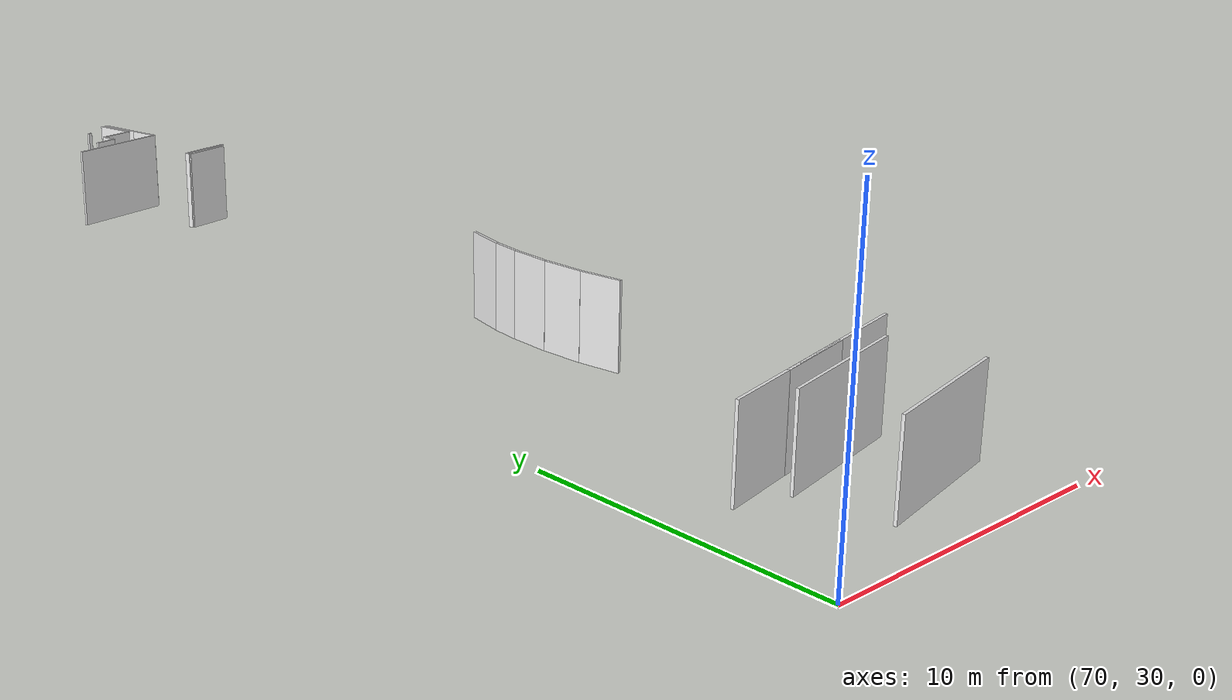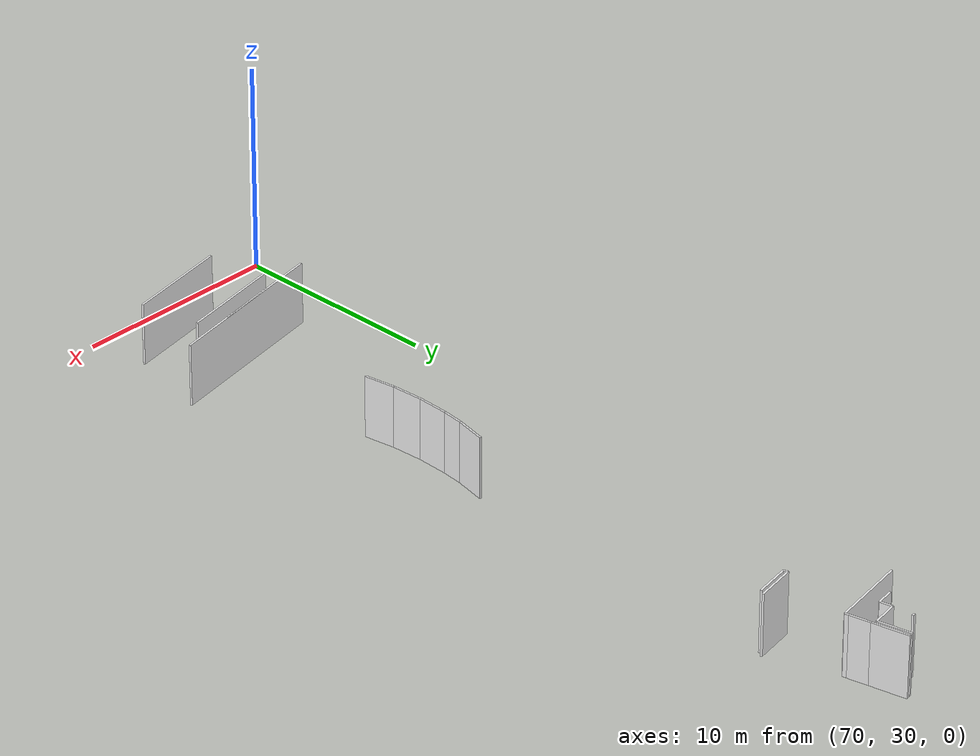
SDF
<sdf version="1.6">
 <world name="default">
  <model name="wall_74.9_72.7">
   <static>true</static>
   <pose>74.86499999999069 72.69500000006519 1.5 0 0 -2.944197095083166</pose>
   <link name="link">
    <visual name="visual">
     <geometry><box><size>0.15297058539043204 0.1 3</size></box></geometry>
     <material>
      <script><uri>file://media/materials/scripts/gazebo.material</uri><name>Gazebo/White</name></script>
     </material>
    </visual>
    <collision name="collision"><geometry><box><size>0.15297058539043204 0.1 3</size></box></geometry></collision>
   </link>
  </model>
  <model name="wall_74.7_71.0">
   <static>true</static>
   <pose>74.67499999998836 71.02499999990687 1.5 0 0 0.19739555977086584</pose>
   <link name="link">
    <visual name="visual">
     <geometry><box><size>0.8668333172733308 0.1 3</size></box></geometry>
     <material>
      <script><uri>file://media/materials/scripts/gazebo.material</uri><name>Gazebo/White</name></script>
     </material>
    </visual>
    <collision name="collision"><geometry><box><size>0.8668333172733308 0.1 3</size></box></geometry></collision>
   </link>
  </model>
  <model name="wall_75.0_71.4">
   <static>true</static>
   <pose>75.03999999997905 71.40500000002794 1.5 0 0 1.7714492040023821</pose>
   <link name="link">
    <visual name="visual">
     <geometry><box><size>0.6020797292489833 0.1 3</size></box></geometry>
     <material>
      <script><uri>file://media/materials/scripts/gazebo.material</uri><name>Gazebo/White</name></script>
     </material>
    </visual>
    <collision name="collision"><geometry><box><size>0.6020797292489833 0.1 3</size></box></geometry></collision>
   </link>
  </model>
  <model name="wall_75.6_71.8">
   <static>true</static>
   <pose>75.61499999999069 71.82500000018626 1.5 0 0 0.1943652660922386</pose>
   <link name="link">
    <visual name="visual">
     <geometry><box><size>1.2943724348298333 0.1 3</size></box></geometry>
     <material>
      <script><uri>file://media/materials/scripts/gazebo.material</uri><name>Gazebo/White</name></script>
     </material>
    </visual>
    <collision name="collision"><geometry><box><size>1.2943724348298333 0.1 3</size></box></geometry></collision>
   </link>
  </model>
  <model name="wall_76.1_72.8">
   <static>true</static>
   <pose>76.08999999999651 72.75500000012107 1.5 0 0 1.7669971441026713</pose>
   <link name="link">
    <visual name="visual">
     <geometry><box><size>1.6414932225216863 0.1 3</size></box></geometry>
     <material>
      <script><uri>file://media/materials/scripts/gazebo.material</uri><name>Gazebo/White</name></script>
     </material>
    </visual>
    <collision name="collision"><geometry><box><size>1.6414932225216863 0.1 3</size></box></geometry></collision>
   </link>
  </model>
  <model name="wall_76.3_72.7">
   <static>true</static>
   <pose>76.2949999999837 72.71999999997206 1.5 0 0 -1.374493662723798</pose>
   <link name="link">
    <visual name="visual">
     <geometry><box><size>1.7944637084198858 0.1 3</size></box></geometry>
     <material>
      <script><uri>file://media/materials/scripts/gazebo.material</uri><name>Gazebo/White</name></script>
     </material>
    </visual>
    <collision name="collision"><geometry><box><size>1.7944637084198858 0.1 3</size></box></geometry></collision>
   </link>
  </model>
  <model name="wall_76.6_71.3">
   <static>true</static>
   <pose>76.56999999997788 71.3499999998603 1.5 0 0 -1.3694792184051279</pose>
   <link name="link">
    <visual name="visual">
     <geometry><box><size>1.0001999799880765 0.1 3</size></box></geometry>
     <material>
      <script><uri>file://media/materials/scripts/gazebo.material</uri><name>Gazebo/White</name></script>
     </material>
    </visual>
    <collision name="collision"><geometry><box><size>1.0001999799880765 0.1 3</size></box></geometry></collision>
   </link>
  </model>
  <model name="wall_76.7_70.8">
   <static>true</static>
   <pose>76.69000000000233 70.76499999989755 1.5 0 0 -1.3633001001126588</pose>
   <link name="link">
    <visual name="visual">
     <geometry><box><size>0.19416487834246976 0.1 3</size></box></geometry>
     <material>
      <script><uri>file://media/materials/scripts/gazebo.material</uri><name>Gazebo/White</name></script>
     </material>
    </visual>
    <collision name="collision"><geometry><box><size>0.19416487834246976 0.1 3</size></box></geometry></collision>
   </link>
  </model>
  <model name="wall_76.9_67.2">
   <static>true</static>
   <pose>76.94999999998254 67.18999999994412 1.5 0 0 -2.9481653269346513</pose>
   <link name="link">
    <visual name="visual">
     <geometry><box><size>1.976866206885053 0.1 3</size></box></geometry>
     <material>
      <script><uri>file://media/materials/scripts/gazebo.material</uri><name>Gazebo/White</name></script>
     </material>
    </visual>
    <collision name="collision"><geometry><box><size>1.976866206885053 0.1 3</size></box></geometry></collision>
   </link>
  </model>
  <model name="wall_74.8_70.3">
   <static>true</static>
   <pose>74.83999999999651 70.30000000004657 1.5 0 0 0.19533794952017633</pose>
   <link name="link">
    <visual name="visual">
     <geometry><box><size>3.8125057377015654 0.1 3</size></box></geometry>
     <material>
      <script><uri>file://media/materials/scripts/gazebo.material</uri><name>Gazebo/White</name></script>
     </material>
    </visual>
    <collision name="collision"><geometry><box><size>3.8125057377015654 0.1 3</size></box></geometry></collision>
   </link>
  </model>
  <model name="wall_76.9_32.1">
   <static>true</static>
   <pose>76.87999999997555 32.14500000001863 1.5 0 0 -2.948381169699356</pose>
   <link name="link">
    <visual name="visual">
     <geometry><box><size>5.155938323954138 0.1 3</size></box></geometry>
     <material>
      <script><uri>file://media/materials/scripts/gazebo.material</uri><name>Gazebo/White</name></script>
     </material>
    </visual>
    <collision name="collision"><geometry><box><size>5.155938323954138 0.1 3</size></box></geometry></collision>
   </link>
  </model>
  <model name="wall_76.3_35.0">
   <static>true</static>
   <pose>76.31500000000233 34.97500000009313 1.5 0 0 0.1935846027304586</pose>
   <link name="link">
    <visual name="visual">
     <geometry><box><size>5.146124755669345 0.1 3</size></box></geometry>
     <material>
      <script><uri>file://media/materials/scripts/gazebo.material</uri><name>Gazebo/White</name></script>
     </material>
    </visual>
    <collision name="collision"><geometry><box><size>5.146124755669345 0.1 3</size></box></geometry></collision>
   </link>
  </model>
  <model name="wall_76.0_66.9">
   <static>true</static>
   <pose>76.00500000000466 66.89999999990687 1.5 0 0 -1.3258176636680326</pose>
   <link name="link">
    <visual name="visual">
     <geometry><box><size>0.2061552814728801 0.1 3</size></box></geometry>
     <material>
      <script><uri>file://media/materials/scripts/gazebo.material</uri><name>Gazebo/White</name></script>
     </material>
    </visual>
    <collision name="collision"><geometry><box><size>0.2061552814728801 0.1 3</size></box></geometry></collision>
   </link>
  </model>
  <model name="wall_76.9_67.0">
   <static>true</static>
   <pose>76.90000000002328 66.96999999997206 1.5 0 0 0.19297081014186676</pose>
   <link name="link">
    <visual name="visual">
     <geometry><box><size>1.77290721702601 0.1 3</size></box></geometry>
     <material>
      <script><uri>file://media/materials/scripts/gazebo.material</uri><name>Gazebo/White</name></script>
     </material>
    </visual>
    <collision name="collision"><geometry><box><size>1.77290721702601 0.1 3</size></box></geometry></collision>
   </link>
  </model>
  <model name="wall_77.0_50.1">
   <static>true</static>
   <pose>76.98500000001513 50.140000000130385 1.5 0 0 -1.7873466317813498</pose>
   <link name="link">
    <visual name="visual">
     <geometry><box><size>1.5358710883439264 0.1 3</size></box></geometry>
     <material>
      <script><uri>file://media/materials/scripts/gazebo.material</uri><name>Gazebo/White</name></script>
     </material>
    </visual>
    <collision name="collision"><geometry><box><size>1.5358710883439264 0.1 3</size></box></geometry></collision>
   </link>
  </model>
  <model name="wall_76.8_48.9">
   <static>true</static>
   <pose>76.76000000000931 48.875 1.5 0 0 -1.6867783112416597</pose>
   <link name="link">
    <visual name="visual">
     <geometry><box><size>1.0369667306794703 0.1 3</size></box></geometry>
     <material>
      <script><uri>file://media/materials/scripts/gazebo.material</uri><name>Gazebo/White</name></script>
     </material>
    </visual>
    <collision name="collision"><geometry><box><size>1.0369667306794703 0.1 3</size></box></geometry></collision>
   </link>
  </model>
  <model name="wall_76.7_47.6">
   <static>true</static>
   <pose>76.6700000000128 47.61499999999069 1.5 0 0 -1.6110430385750105</pose>
   <link name="link">
    <visual name="visual">
     <geometry><box><size>1.4912075641164553 0.1 3</size></box></geometry>
     <material>
      <script><uri>file://media/materials/scripts/gazebo.material</uri><name>Gazebo/White</name></script>
     </material>
    </visual>
    <collision name="collision"><geometry><box><size>1.4912075641164553 0.1 3</size></box></geometry></collision>
   </link>
  </model>
  <model name="wall_76.7_46.1">
   <static>true</static>
   <pose>76.67999999999302 46.11499999999069 1.5 0 0 -1.5178656809449116</pose>
   <link name="link">
    <visual name="visual">
     <geometry><box><size>1.5121177205246188 0.1 3</size></box></geometry>
     <material>
      <script><uri>file://media/materials/scripts/gazebo.material</uri><name>Gazebo/White</name></script>
     </material>
    </visual>
    <collision name="collision"><geometry><box><size>1.5121177205246188 0.1 3</size></box></geometry></collision>
   </link>
  </model>
  <model name="wall_76.8_44.6">
   <static>true</static>
   <pose>76.8299999999872 44.609999999869615 1.5 0 0 -1.4251679462043203</pose>
   <link name="link">
    <visual name="visual">
     <geometry><box><size>1.5160474926641705 0.1 3</size></box></geometry>
     <material>
      <script><uri>file://media/materials/scripts/gazebo.material</uri><name>Gazebo/White</name></script>
     </material>
    </visual>
    <collision name="collision"><geometry><box><size>1.5160474926641705 0.1 3</size></box></geometry></collision>
   </link>
  </model>
  <model name="wall_76.1_35.8">
   <static>true</static>
   <pose>76.14999999999418 35.79000000003725 1.5 0 0 -2.9468148887829875</pose>
   <link name="link">
    <visual name="visual">
     <geometry><box><size>2.996664812771044 0.1 3</size></box></geometry>
     <material>
      <script><uri>file://media/materials/scripts/gazebo.material</uri><name>Gazebo/White</name></script>
     </material>
    </visual>
    <collision name="collision"><geometry><box><size>2.996664812771044 0.1 3</size></box></geometry></collision>
   </link>
  </model>
  <model name="wall_76.2_35.8">
   <static>true</static>
   <pose>76.22000000000116 35.81500000017695 1.5 0 0 0.19577706414235704</pose>
   <link name="link">
    <visual name="visual">
     <geometry><box><size>8.482033954176845 0.1 3</size></box></geometry>
     <material>
      <script><uri>file://media/materials/scripts/gazebo.material</uri><name>Gazebo/White</name></script>
     </material>
    </visual>
    <collision name="collision"><geometry><box><size>8.482033954176845 0.1 3</size></box></geometry></collision>
   </link>
  </model>
 </world>
</sdf>
